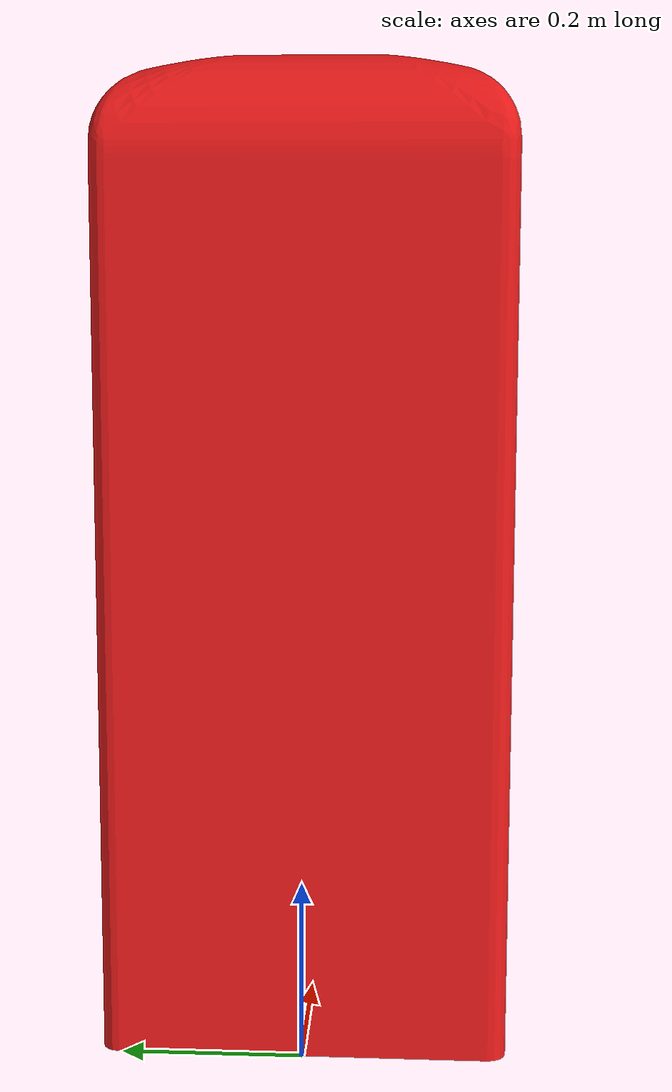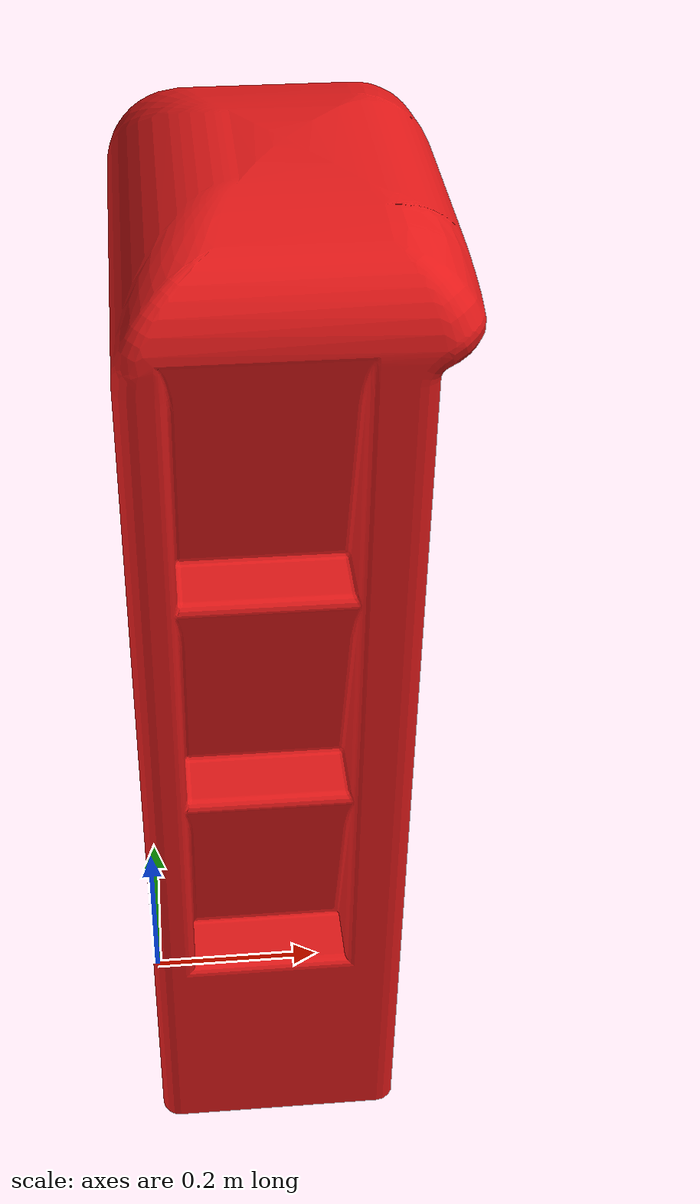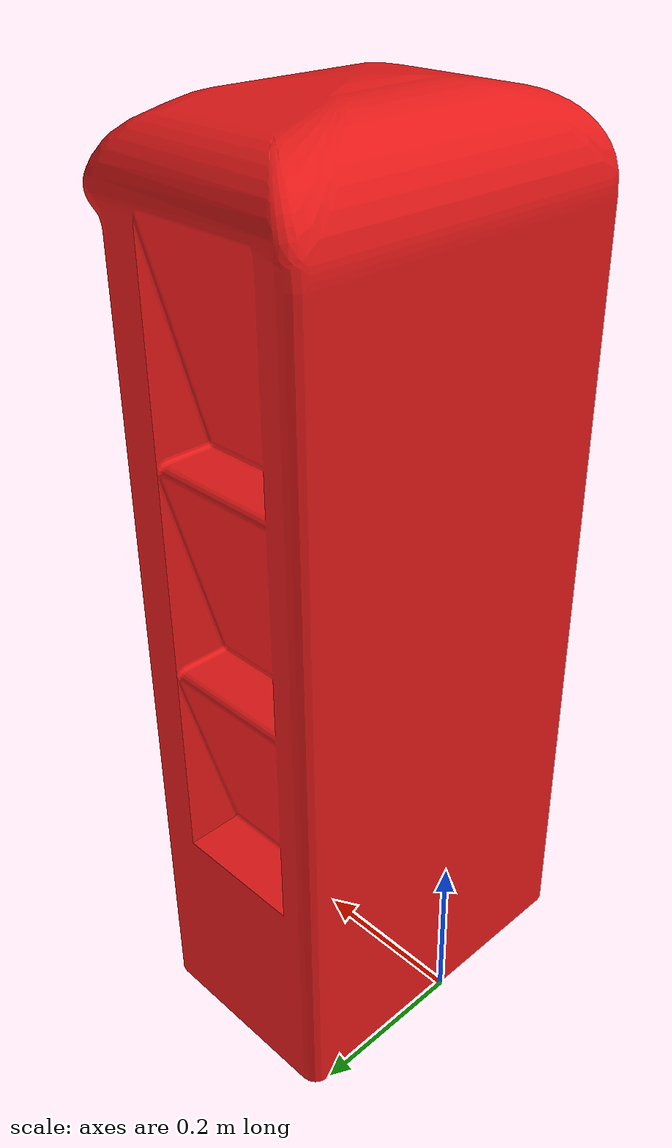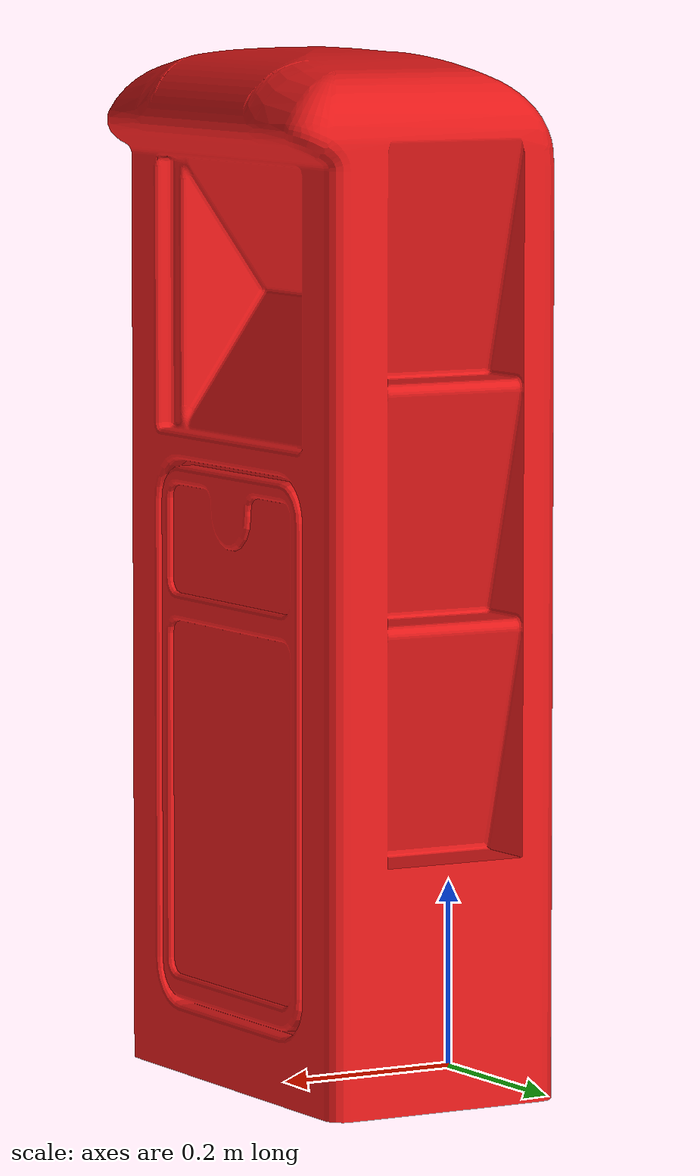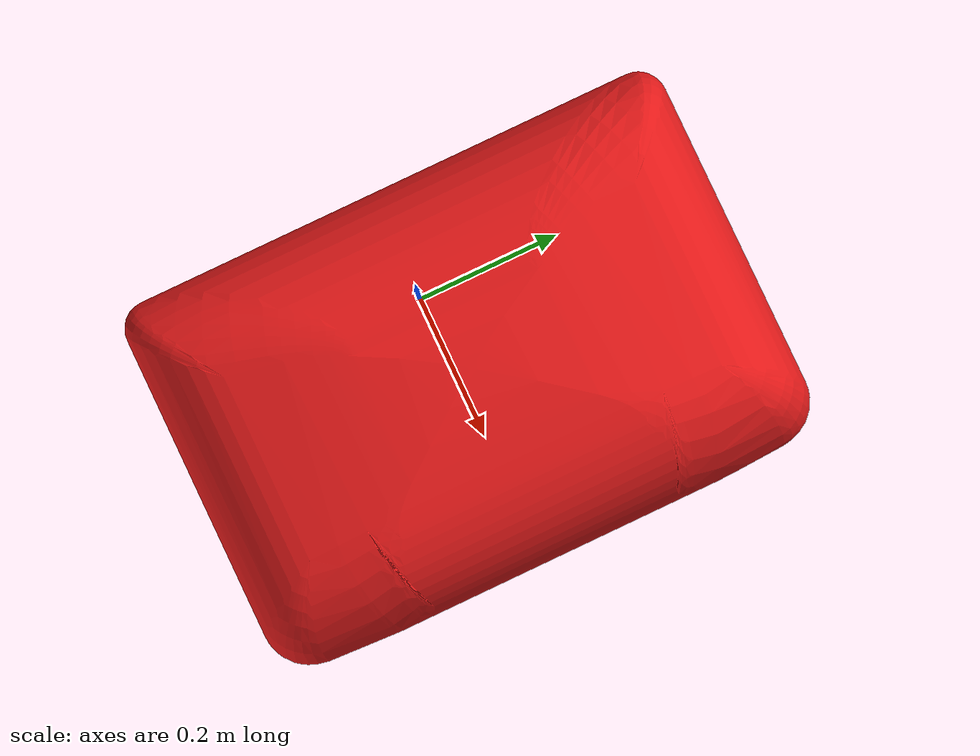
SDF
<?xml version='1.0'?>
<sdf version='1.7'>
  <model name='SMART_FIRE_cabinet'>
    <link name='link'>
      <self_collide>0</self_collide>
      <gravity>1</gravity>
      <inertial>
        <mass>5</mass>
        <pose>0 0 0 0 0 0</pose>
        <inertia>
          <ixx>1</ixx>
          <ixy>0</ixy>
          <ixz>0</ixz>
          <iyy>1</iyy>
          <iyz>0</iyz>
          <izz>1</izz>
        </inertia>
      </inertial>
      <enable_wind>0</enable_wind>
      <kinematic>0</kinematic>
      <pose>0 0 0 0 0 0</pose>
      <visual name='visual'>
        <pose>0 0 0 0 0 0</pose>
        <geometry>
          <mesh>
            <uri>/marinero_simulations/models/SMART_FIRE_cabinet/meshes/SMART_FIRE_cabinet.stl</uri>
            <scale>1 1 1</scale>
          </mesh>
        </geometry>
        <material>
          <shader type='pixel'>
            <normal_map>__default__</normal_map>
          </shader>
          <ambient>0.9 0.1 0.1 1</ambient>
          <diffuse>0.9 0.1 0.1 1</diffuse>
          <specular>0.2 0.2 0.2 1</specular>
          <emissive>0 0 0 1</emissive>
        </material>
        <transparency>0</transparency>
        <cast_shadows>1</cast_shadows>
      </visual>
      <collision name='collision'>
        <laser_retro>0</laser_retro>
        <max_contacts>10</max_contacts>
        <pose>0 0 0 0 0 0</pose>
        <geometry>
          <mesh>
            <uri>/marinero_simulations/models/SMART_FIRE_cabinet/meshes/SMART_FIRE_cabinet.stl</uri>
            <scale>1 1 1</scale>
          </mesh>
        </geometry>
        <surface>
          <friction>
            <ode>
              <mu>1</mu>
              <mu2>1</mu2>
              <fdir1>0 0 0</fdir1>
              <slip1>0.0</slip1>
              <slip2>0.0</slip2>
            </ode>
            <torsional>
              <coefficient>1</coefficient>
              <patch_radius>0</patch_radius>
              <surface_radius>0</surface_radius>
              <use_patch_radius>1</use_patch_radius>
              <ode>
                <slip>0</slip>
              </ode>
            </torsional>
          </friction>
          <bounce>
            <restitution_coefficient>0</restitution_coefficient>
            <threshold>1e+06</threshold>
          </bounce>
          <contact>
            <collide_without_contact>0</collide_without_contact>
            <collide_without_contact_bitmask>1</collide_without_contact_bitmask>
            <collide_bitmask>1</collide_bitmask>
            <ode>
              <soft_cfm>0</soft_cfm>
              <soft_erp>0.2</soft_erp>
              <kp>1e+06</kp>
              <kd>1</kd>
              <max_vel>0.01</max_vel>
              <min_depth>0</min_depth>
            </ode>
            <bullet>
              <split_impulse>1</split_impulse>
              <split_impulse_penetration_threshold>-0.01</split_impulse_penetration_threshold>
              <soft_cfm>0</soft_cfm>
              <soft_erp>0.2</soft_erp>
              <kp>1e+06</kp>
              <kd>1</kd>
            </bullet>
          </contact>
        </surface>
      </collision>
    </link>
    <static>1</static>
    <allow_auto_disable>1</allow_auto_disable>
  </model>
</sdf>
